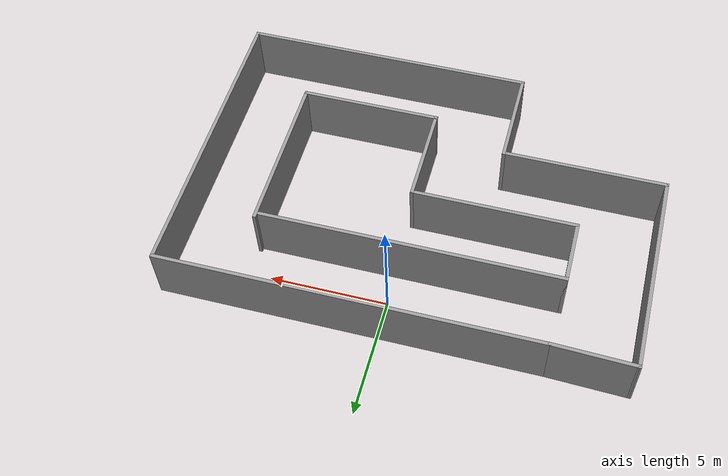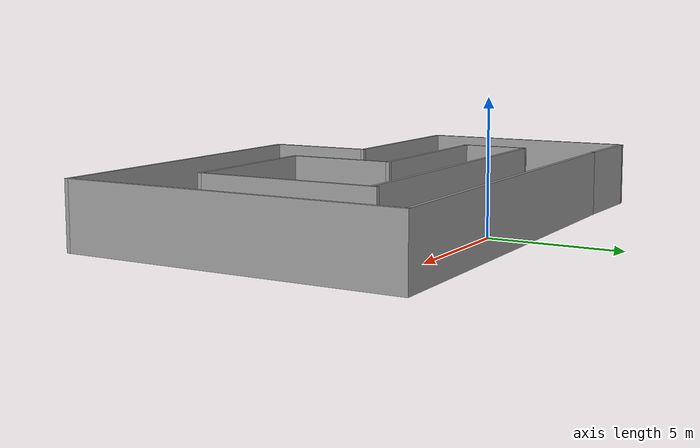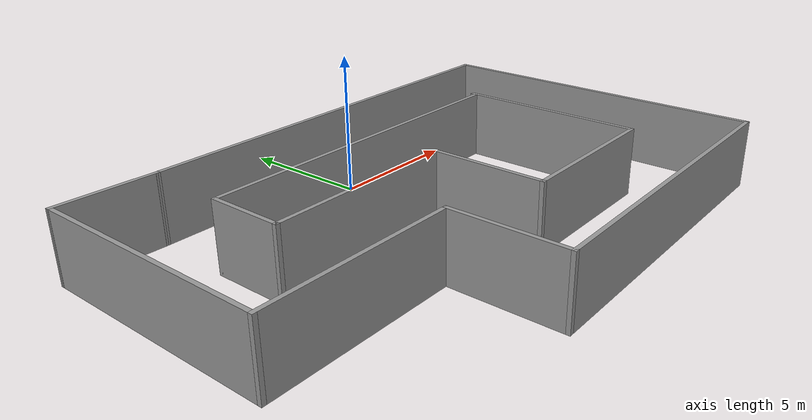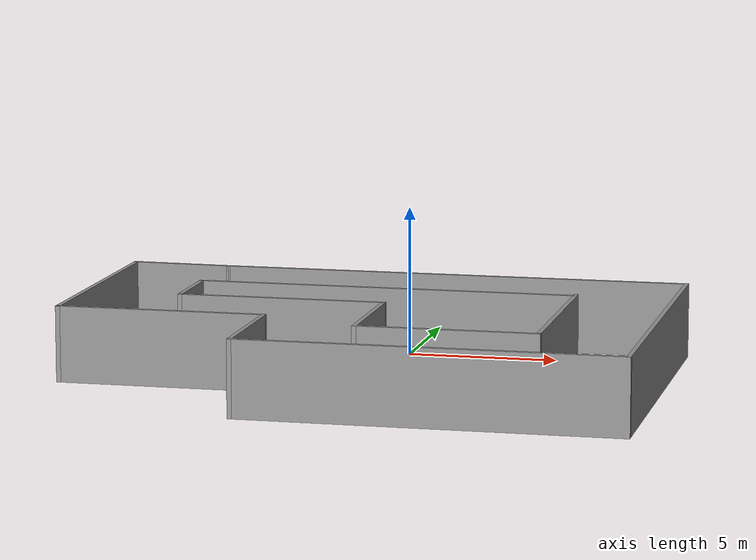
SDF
<?xml version='1.0'?>
<sdf version='1.6'>
  <model name='Untitled'>
    <pose frame=''>-0.486163 -4.67991 0 0 -0 0</pose>
    <link name='Wall_39'>
      <collision name='Wall_39_Collision'>
        <geometry>
          <box>
            <size>7 0.15 2.5</size>
          </box>
        </geometry>
        <pose frame=''>0 0 1.25 0 -0 0</pose>
      </collision>
      <visual name='Wall_39_Visual'>
        <pose frame=''>0 0 1.25 0 -0 0</pose>
        <geometry>
          <box>
            <size>7 0.15 2.5</size>
          </box>
        </geometry>
        <material>
          <script>
            <uri>file://media/materials/scripts/gazebo.material</uri>
            <name>Gazebo/Grey</name>
          </script>
          <ambient>1 1 1 1</ambient>
        </material>
        <meta>
          <layer>0</layer>
        </meta>
      </visual>
      <pose frame=''>6.33744 -4.9e-05 0 0 -0 -1.5708</pose>
    </link>
    <link name='Wall_40'>
      <collision name='Wall_40_Collision'>
        <geometry>
          <box>
            <size>6 0.15 2.5</size>
          </box>
        </geometry>
        <pose frame=''>0 0 1.25 0 -0 0</pose>
      </collision>
      <visual name='Wall_40_Visual'>
        <pose frame=''>0 0 1.25 0 -0 0</pose>
        <geometry>
          <box>
            <size>6 0.15 2.5</size>
          </box>
        </geometry>
        <material>
          <script>
            <uri>file://media/materials/scripts/gazebo.material</uri>
            <name>Gazebo/Grey</name>
          </script>
          <ambient>1 1 1 1</ambient>
        </material>
        <meta>
          <layer>0</layer>
        </meta>
      </visual>
      <pose frame=''>3.41244 -3.42505 0 0 -0 3.14159</pose>
    </link>
    <link name='Wall_41'>
      <collision name='Wall_41_Collision'>
        <geometry>
          <box>
            <size>4.25 0.15 2.5</size>
          </box>
        </geometry>
        <pose frame=''>0 0 1.25 0 -0 0</pose>
      </collision>
      <visual name='Wall_41_Visual'>
        <pose frame=''>0 0 1.25 0 -0 0</pose>
        <geometry>
          <box>
            <size>4.25 0.15 2.5</size>
          </box>
        </geometry>
        <material>
          <script>
            <uri>file://media/materials/scripts/gazebo.material</uri>
            <name>Gazebo/Grey</name>
          </script>
          <ambient>1 1 1 1</ambient>
        </material>
        <meta>
          <layer>0</layer>
        </meta>
      </visual>
      <pose frame=''>0.487436 -1.37505 0 0 -0 1.5708</pose>
    </link>
    <link name='Wall_42'>
      <collision name='Wall_42_Collision'>
        <geometry>
          <box>
            <size>7 0.15 2.5</size>
          </box>
        </geometry>
        <pose frame=''>0 0 1.25 0 -0 0</pose>
      </collision>
      <visual name='Wall_42_Visual'>
        <pose frame=''>0 0 1.25 0 -0 0</pose>
        <geometry>
          <box>
            <size>7 0.15 2.5</size>
          </box>
        </geometry>
        <material>
          <script>
            <uri>file://media/materials/scripts/gazebo.material</uri>
            <name>Gazebo/Grey</name>
          </script>
          <ambient>1 1 1 1</ambient>
        </material>
        <meta>
          <layer>0</layer>
        </meta>
      </visual>
      <pose frame=''>-2.93756 0.674951 0 0 -0 3.14159</pose>
    </link>
    <link name='Wall_43'>
      <collision name='Wall_43_Collision'>
        <geometry>
          <box>
            <size>2.75 0.15 2.5</size>
          </box>
        </geometry>
        <pose frame=''>0 0 1.25 0 -0 0</pose>
      </collision>
      <visual name='Wall_43_Visual'>
        <pose frame=''>0 0 1.25 0 -0 0</pose>
        <geometry>
          <box>
            <size>2.75 0.15 2.5</size>
          </box>
        </geometry>
        <material>
          <script>
            <uri>file://media/materials/scripts/gazebo.material</uri>
            <name>Gazebo/Grey</name>
          </script>
          <ambient>1 1 1 1</ambient>
        </material>
        <meta>
          <layer>0</layer>
        </meta>
      </visual>
      <pose frame=''>-6.36256 1.97495 0 0 -0 1.5708</pose>
    </link>
    <link name='Wall_45'>
      <collision name='Wall_45_Collision'>
        <geometry>
          <box>
            <size>12.75 0.15 2.5</size>
          </box>
        </geometry>
        <pose frame=''>0 0 1.25 0 -0 0</pose>
      </collision>
      <visual name='Wall_45_Visual'>
        <pose frame=''>0 0 1.25 0 -0 0</pose>
        <geometry>
          <box>
            <size>12.75 0.15 2.5</size>
          </box>
        </geometry>
        <material>
          <script>
            <uri>file://media/materials/scripts/gazebo.material</uri>
            <name>Gazebo/Grey</name>
          </script>
          <ambient>1 1 1 1</ambient>
        </material>
        <meta>
          <layer>0</layer>
        </meta>
      </visual>
      <pose frame=''>-0.062564 3.27495 0 0 -0 0</pose>
    </link>
    <link name='Wall_47'>
      <collision name='Wall_47_Collision'>
        <geometry>
          <box>
            <size>16 0.15 2.5</size>
          </box>
        </geometry>
        <pose frame=''>0 0 1.25 0 -0 0</pose>
      </collision>
      <visual name='Wall_47_Visual'>
        <pose frame=''>0 0 1.25 0 -0 0</pose>
        <geometry>
          <box>
            <size>16 0.15 2.5</size>
          </box>
        </geometry>
        <material>
          <script>
            <uri>file://media/materials/scripts/gazebo.material</uri>
            <name>Gazebo/Grey</name>
          </script>
          <ambient>1 1 1 1</ambient>
        </material>
        <meta>
          <layer>0</layer>
        </meta>
      </visual>
      <pose frame=''>1.6761 6.2489 0 0 -0 0</pose>
    </link>
    <link name='Wall_48'>
      <collision name='Wall_48_Collision'>
        <geometry>
          <box>
            <size>12.75 0.15 2.5</size>
          </box>
        </geometry>
        <pose frame=''>0 0 1.25 0 -0 0</pose>
      </collision>
      <visual name='Wall_48_Visual'>
        <pose frame=''>0 0 1.25 0 -0 0</pose>
        <geometry>
          <box>
            <size>12.75 0.15 2.5</size>
          </box>
        </geometry>
        <material>
          <script>
            <uri>file://media/materials/scripts/gazebo.material</uri>
            <name>Gazebo/Grey</name>
          </script>
          <ambient>1 1 1 1</ambient>
        </material>
        <meta>
          <layer>0</layer>
        </meta>
      </visual>
      <pose frame=''>9.6011 -0.051102 0 0 -0 -1.5708</pose>
    </link>
    <link name='Wall_49'>
      <collision name='Wall_49_Collision'>
        <geometry>
          <box>
            <size>12.5 0.15 2.5</size>
          </box>
        </geometry>
        <pose frame=''>0 0 1.25 0 -0 0</pose>
      </collision>
      <visual name='Wall_49_Visual'>
        <pose frame=''>0 0 1.25 0 -0 0</pose>
        <geometry>
          <box>
            <size>12.5 0.15 2.5</size>
          </box>
        </geometry>
        <material>
          <script>
            <uri>file://media/materials/scripts/gazebo.material</uri>
            <name>Gazebo/Grey</name>
          </script>
          <ambient>1 1 1 1</ambient>
        </material>
        <meta>
          <layer>0</layer>
        </meta>
      </visual>
      <pose frame=''>3.4261 -6.3511 0 0 -0 3.14159</pose>
    </link>
    <link name='Wall_50'>
      <collision name='Wall_50_Collision'>
        <geometry>
          <box>
            <size>4.25 0.15 2.5</size>
          </box>
        </geometry>
        <pose frame=''>0 0 1.25 0 -0 0</pose>
      </collision>
      <visual name='Wall_50_Visual'>
        <pose frame=''>0 0 1.25 0 -0 0</pose>
        <geometry>
          <box>
            <size>4.25 0.15 2.5</size>
          </box>
        </geometry>
        <material>
          <script>
            <uri>file://media/materials/scripts/gazebo.material</uri>
            <name>Gazebo/Grey</name>
          </script>
          <ambient>1 1 1 1</ambient>
        </material>
        <meta>
          <layer>0</layer>
        </meta>
      </visual>
      <pose frame=''>-2.7489 -4.3011 0 0 -0 1.5708</pose>
    </link>
    <link name='Wall_51'>
      <collision name='Wall_51_Collision'>
        <geometry>
          <box>
            <size>7 0.15 2.5</size>
          </box>
        </geometry>
        <pose frame=''>0 0 1.25 0 -0 0</pose>
      </collision>
      <visual name='Wall_51_Visual'>
        <pose frame=''>0 0 1.25 0 -0 0</pose>
        <geometry>
          <box>
            <size>7 0.15 2.5</size>
          </box>
        </geometry>
        <material>
          <script>
            <uri>file://media/materials/scripts/gazebo.material</uri>
            <name>Gazebo/Grey</name>
          </script>
          <ambient>1 1 1 1</ambient>
        </material>
        <meta>
          <layer>0</layer>
        </meta>
      </visual>
      <pose frame=''>-6.1739 -2.2511 0 0 -0 3.14159</pose>
    </link>
    <link name='Wall_52'>
      <collision name='Wall_52_Collision'>
        <geometry>
          <box>
            <size>8.75 0.15 2.5</size>
          </box>
        </geometry>
        <pose frame=''>0 0 1.25 0 -0 0</pose>
      </collision>
      <visual name='Wall_52_Visual'>
        <pose frame=''>0 0 1.25 0 -0 0</pose>
        <geometry>
          <box>
            <size>8.75 0.15 2.5</size>
          </box>
        </geometry>
        <material>
          <script>
            <uri>file://media/materials/scripts/gazebo.material</uri>
            <name>Gazebo/Grey</name>
          </script>
          <ambient>1 1 1 1</ambient>
        </material>
        <meta>
          <layer>0</layer>
        </meta>
      </visual>
      <pose frame=''>-9.5989 2.0489 0 0 -0 1.5708</pose>
    </link>
    <link name='Wall_53'>
      <collision name='Wall_53_Collision'>
        <geometry>
          <box>
            <size>3.50149 0.15 2.5</size>
          </box>
        </geometry>
        <pose frame=''>0 0 1.25 0 -0 0</pose>
      </collision>
      <visual name='Wall_53_Visual'>
        <pose frame=''>0 0 1.25 0 -0 0</pose>
        <geometry>
          <box>
            <size>3.50149 0.15 2.5</size>
          </box>
        </geometry>
        <material>
          <script>
            <uri>file://media/materials/scripts/gazebo.material</uri>
            <name>Gazebo/Grey</name>
          </script>
          <ambient>1 1 1 1</ambient>
        </material>
        <meta>
          <layer>0</layer>
        </meta>
      </visual>
      <pose frame=''>-7.9239 6.2989 0 0 -0 -0.029842</pose>
    </link>
    <static>1</static>
  </model>
</sdf>
